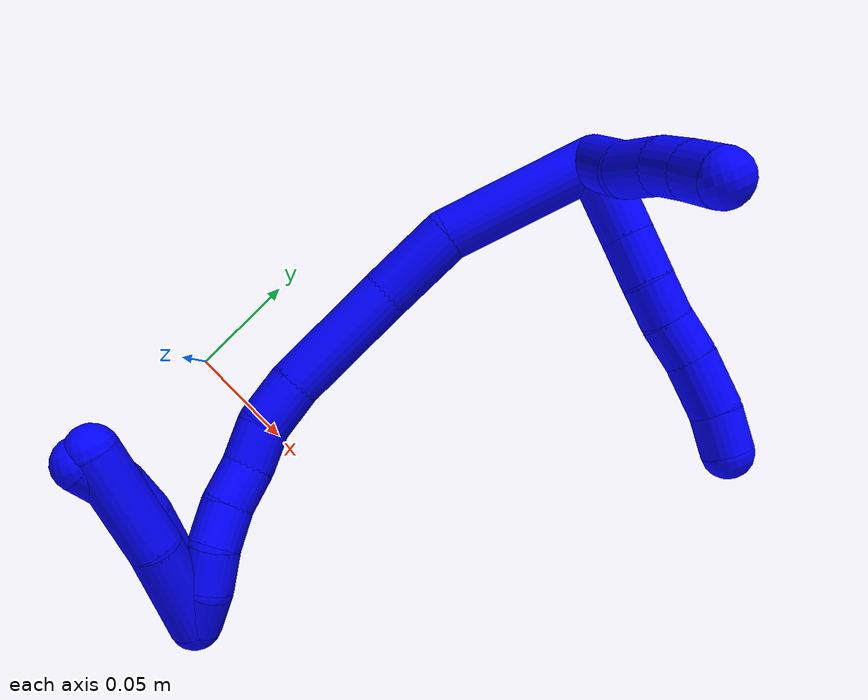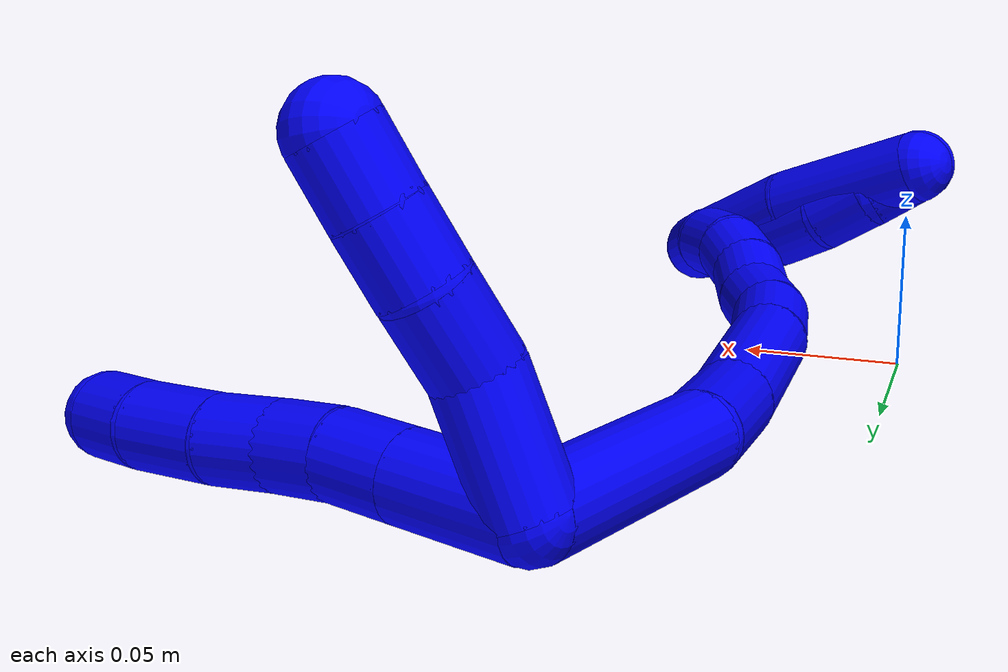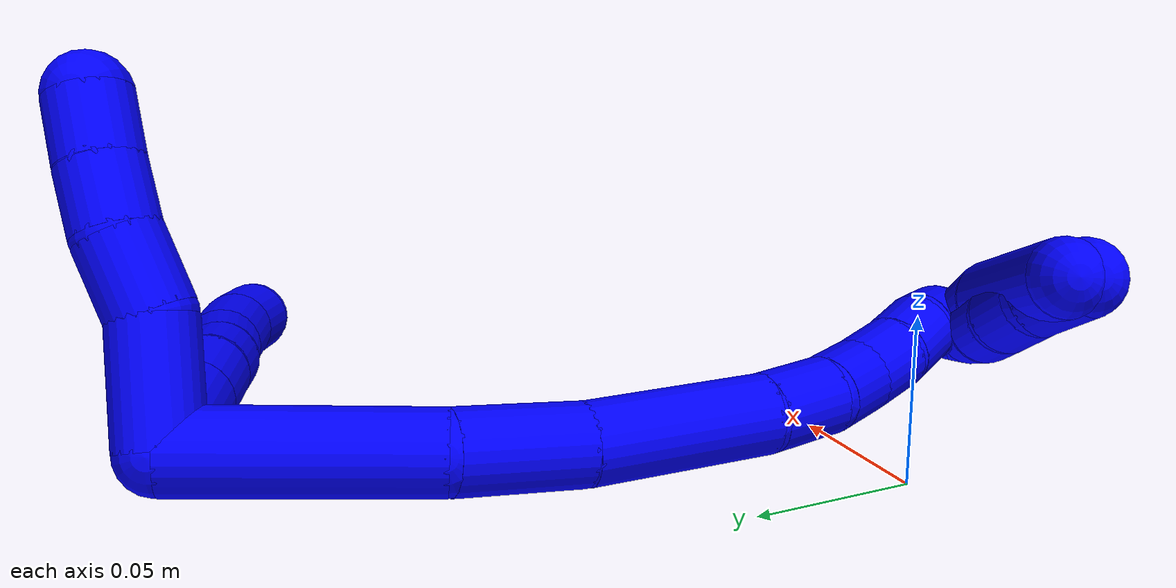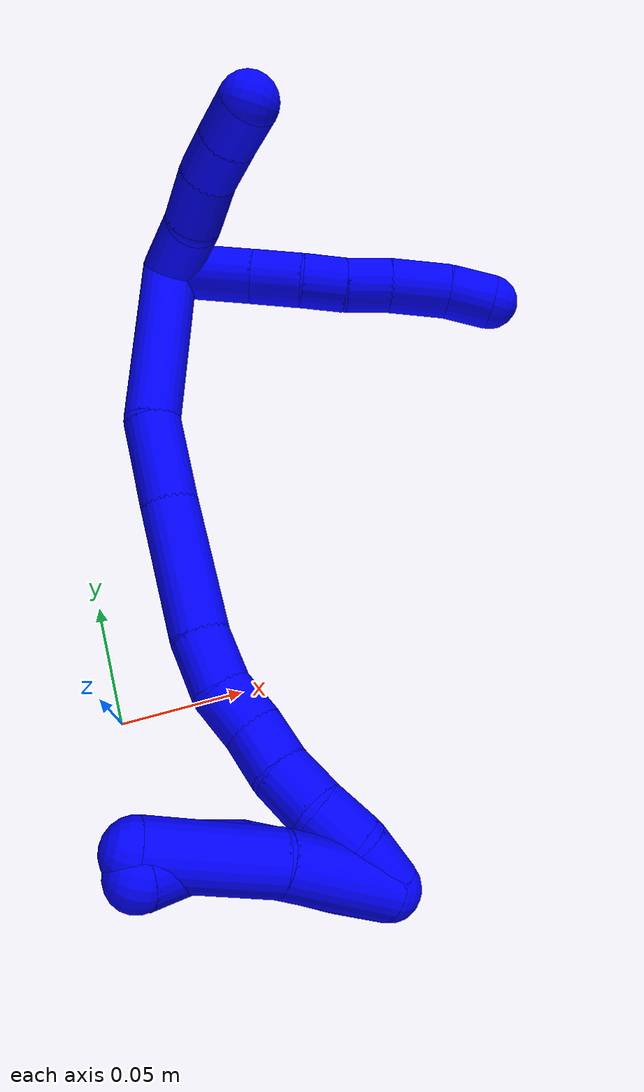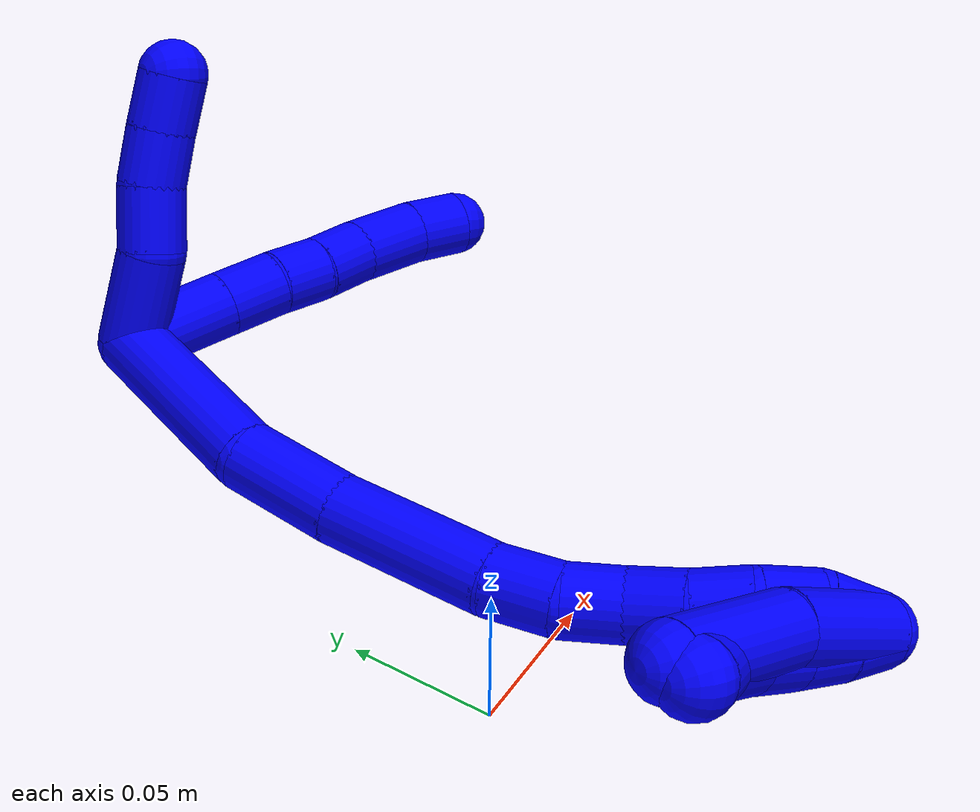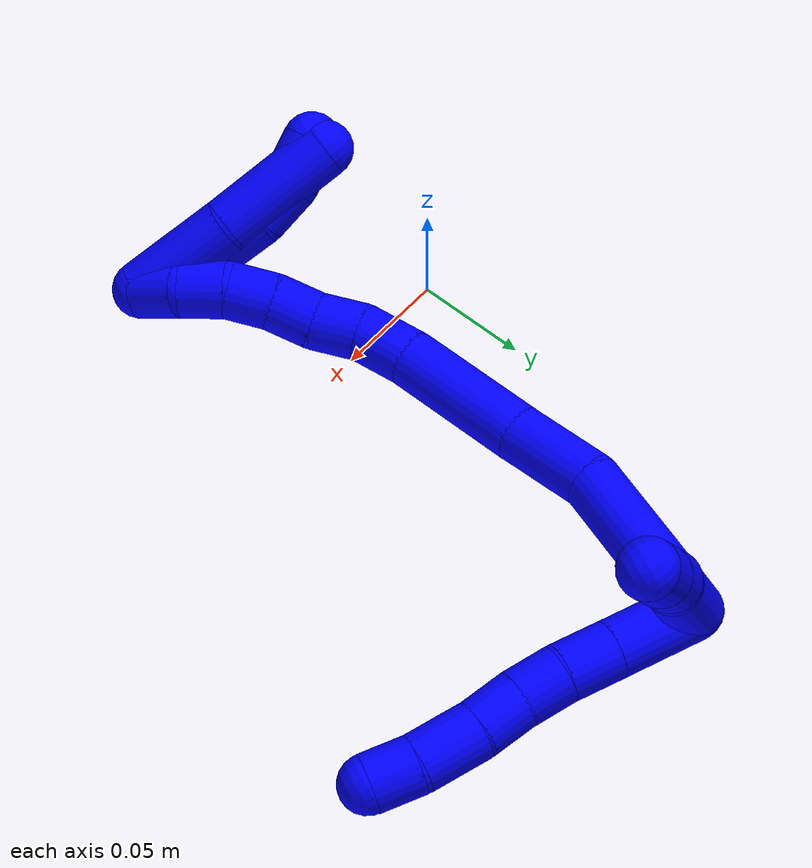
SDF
<sdf version="1.7">
 <world name="default">
  <model name="1">
   <static>0</static>
   <link name="1">
    <collision name="collision-cylinder-e_1_2_8">
     <pose>0.004521 0.003033 -0.018309 -2.97742 0.238963 -1.94003</pose>
     <geometry><cylinder><radius>0.0125</radius><length>0.038203</length></cylinder></geometry>
     <surface>
      <friction><ode><mu>1.16</mu><mu2>1.16</mu2><slip1>0</slip1><slip2>0</slip2></ode></friction>
      <contact><ode><kp>1e+06</kp><kd>1</kd><max_vel>0</max_vel><min_depth>0.001</min_depth></ode></contact>
     </surface>
    </collision>
    <visual name="visual-cylinder-e_1_2_8">
     <pose>0.004521 0.003033 -0.018309 -2.97742 0.238963 -1.94003</pose>
     <geometry><cylinder><radius>0.0125</radius><length>0.038203</length></cylinder></geometry>
     <material><ambient>0 0 1 1</ambient></material>
    </visual>
    <collision name="collision-cylinder-e_2_8_9">
     <pose>0.011756 0.007822 -0.047589 -2.98291 0.239567 -1.97403</pose>
     <geometry><cylinder><radius>0.0125</radius><length>0.022876</length></cylinder></geometry>
     <surface>
      <friction><ode><mu>1.16</mu><mu2>1.16</mu2><slip1>0</slip1><slip2>0</slip2></ode></friction>
      <contact><ode><kp>1e+06</kp><kd>1</kd><max_vel>0</max_vel><min_depth>0.001</min_depth></ode></contact>
     </surface>
    </collision>
    <visual name="visual-cylinder-e_2_8_9">
     <pose>0.011756 0.007822 -0.047589 -2.98291 0.239567 -1.97403</pose>
     <geometry><cylinder><radius>0.0125</radius><length>0.022876</length></cylinder></geometry>
     <material><ambient>0 0 1 1</ambient></material>
    </visual>
    <collision name="collision-cylinder-e_3_9_10">
     <pose>0.015677 0.011139 -0.068425 -2.98461 0.120246 -1.30646</pose>
     <geometry><cylinder><radius>0.0125</radius><length>0.020119</length></cylinder></geometry>
     <surface>
      <friction><ode><mu>1.16</mu><mu2>1.16</mu2><slip1>0</slip1><slip2>0</slip2></ode></friction>
      <contact><ode><kp>1e+06</kp><kd>1</kd><max_vel>0</max_vel><min_depth>0.001</min_depth></ode></contact>
     </surface>
    </collision>
    <visual name="visual-cylinder-e_3_9_10">
     <pose>0.015677 0.011139 -0.068425 -2.98461 0.120246 -1.30646</pose>
     <geometry><cylinder><radius>0.0125</radius><length>0.020119</length></cylinder></geometry>
     <material><ambient>0 0 1 1</ambient></material>
    </visual>
    <collision name="collision-cylinder-e_4_10_11">
     <pose>0.017791 0.015426 -0.088225 -2.87383 0.087797 -0.630513</pose>
     <geometry><cylinder><radius>0.0125</radius><length>0.020686</length></cylinder></geometry>
     <surface>
      <friction><ode><mu>1.16</mu><mu2>1.16</mu2><slip1>0</slip1><slip2>0</slip2></ode></friction>
      <contact><ode><kp>1e+06</kp><kd>1</kd><max_vel>0</max_vel><min_depth>0.001</min_depth></ode></contact>
     </surface>
    </collision>
    <visual name="visual-cylinder-e_4_10_11">
     <pose>0.017791 0.015426 -0.088225 -2.87383 0.087797 -0.630513</pose>
     <geometry><cylinder><radius>0.0125</radius><length>0.020686</length></cylinder></geometry>
     <material><ambient>0 0 1 1</ambient></material>
    </visual>
    <collision name="collision-cylinder-e_5_11_12">
     <pose>0.020698 0.020327 -0.111605 -2.98122 0.145879 -1.47584</pose>
     <geometry><cylinder><radius>0.0125</radius><length>0.027529</length></cylinder></geometry>
     <surface>
      <friction><ode><mu>1.16</mu><mu2>1.16</mu2><slip1>0</slip1><slip2>0</slip2></ode></friction>
      <contact><ode><kp>1e+06</kp><kd>1</kd><max_vel>0</max_vel><min_depth>0.001</min_depth></ode></contact>
     </surface>
    </collision>
    <visual name="visual-cylinder-e_5_11_12">
     <pose>0.020698 0.020327 -0.111605 -2.98122 0.145879 -1.47584</pose>
     <geometry><cylinder><radius>0.0125</radius><length>0.027529</length></cylinder></geometry>
     <material><ambient>0 0 1 1</ambient></material>
    </visual>
    <collision name="collision-cylinder-e_6_12_6">
     <pose>0.024575 0.022553 -0.13517 -3.13649 0.18322 -3.08604</pose>
     <geometry><cylinder><radius>0.0125</radius><length>0.020588</length></cylinder></geometry>
     <surface>
      <friction><ode><mu>1.16</mu><mu2>1.16</mu2><slip1>0</slip1><slip2>0</slip2></ode></friction>
      <contact><ode><kp>1e+06</kp><kd>1</kd><max_vel>0</max_vel><min_depth>0.001</min_depth></ode></contact>
     </surface>
    </collision>
    <visual name="visual-cylinder-e_6_12_6">
     <pose>0.024575 0.022553 -0.13517 -3.13649 0.18322 -3.08604</pose>
     <geometry><cylinder><radius>0.0125</radius><length>0.020588</length></cylinder></geometry>
     <material><ambient>0 0 1 1</ambient></material>
    </visual>
    <collision name="collision-cylinder-e_1_2_13">
     <pose>0.016081 0.007888 -0.001881 -1.80492 1.10375 -1.3246</pose>
     <geometry><cylinder><radius>0.0125</radius><length>0.036019</length></cylinder></geometry>
     <surface>
      <friction><ode><mu>1.16</mu><mu2>1.16</mu2><slip1>0</slip1><slip2>0</slip2></ode></friction>
      <contact><ode><kp>1e+06</kp><kd>1</kd><max_vel>0</max_vel><min_depth>0.001</min_depth></ode></contact>
     </surface>
    </collision>
    <visual name="visual-cylinder-e_1_2_13">
     <pose>0.016081 0.007888 -0.001881 -1.80492 1.10375 -1.3246</pose>
     <geometry><cylinder><radius>0.0125</radius><length>0.036019</length></cylinder></geometry>
     <material><ambient>0 0 1 1</ambient></material>
    </visual>
    <collision name="collision-cylinder-e_2_13_14">
     <pose>0.040679 0.024156 -0.004172 -1.61961 0.792878 -0.82826</pose>
     <geometry><cylinder><radius>0.0125</radius><length>0.023912</length></cylinder></geometry>
     <surface>
      <friction><ode><mu>1.16</mu><mu2>1.16</mu2><slip1>0</slip1><slip2>0</slip2></ode></friction>
      <contact><ode><kp>1e+06</kp><kd>1</kd><max_vel>0</max_vel><min_depth>0.001</min_depth></ode></contact>
     </surface>
    </collision>
    <visual name="visual-cylinder-e_2_13_14">
     <pose>0.040679 0.024156 -0.004172 -1.61961 0.792878 -0.82826</pose>
     <geometry><cylinder><radius>0.0125</radius><length>0.023912</length></cylinder></geometry>
     <material><ambient>0 0 1 1</ambient></material>
    </visual>
    <collision name="collision-cylinder-e_3_14_15">
     <pose>0.057082 0.038479 -0.00623 -1.84145 0.907169 -1.14027</pose>
     <geometry><cylinder><radius>0.0125</radius><length>0.020021</length></cylinder></geometry>
     <surface>
      <friction><ode><mu>1.16</mu><mu2>1.16</mu2><slip1>0</slip1><slip2>0</slip2></ode></friction>
      <contact><ode><kp>1e+06</kp><kd>1</kd><max_vel>0</max_vel><min_depth>0.001</min_depth></ode></contact>
     </surface>
    </collision>
    <visual name="visual-cylinder-e_3_14_15">
     <pose>0.057082 0.038479 -0.00623 -1.84145 0.907169 -1.14027</pose>
     <geometry><cylinder><radius>0.0125</radius><length>0.020021</length></cylinder></geometry>
     <material><ambient>0 0 1 1</ambient></material>
    </visual>
    <collision name="collision-cylinder-e_4_15_5">
     <pose>0.073092 0.049993 -0.009727 -1.89101 0.944984 -1.23211</pose>
     <geometry><cylinder><radius>0.0125</radius><length>0.020048</length></cylinder></geometry>
     <surface>
      <friction><ode><mu>1.16</mu><mu2>1.16</mu2><slip1>0</slip1><slip2>0</slip2></ode></friction>
      <contact><ode><kp>1e+06</kp><kd>1</kd><max_vel>0</max_vel><min_depth>0.001</min_depth></ode></contact>
     </surface>
    </collision>
    <visual name="visual-cylinder-e_4_15_5">
     <pose>0.073092 0.049993 -0.009727 -1.89101 0.944984 -1.23211</pose>
     <geometry><cylinder><radius>0.0125</radius><length>0.020048</length></cylinder></geometry>
     <material><ambient>0 0 1 1</ambient></material>
    </visual>
    <collision name="collision-cylinder-e_1_2_16">
     <pose>0.012563 -0.035444 -0.004057 1.68476 0.338587 0.378632</pose>
     <geometry><cylinder><radius>0.0125</radius><length>0.075645</length></cylinder></geometry>
     <surface>
      <friction><ode><mu>1.16</mu><mu2>1.16</mu2><slip1>0</slip1><slip2>0</slip2></ode></friction>
      <contact><ode><kp>1e+06</kp><kd>1</kd><max_vel>0</max_vel><min_depth>0.001</min_depth></ode></contact>
     </surface>
    </collision>
    <visual name="visual-cylinder-e_1_2_16">
     <pose>0.012563 -0.035444 -0.004057 1.68476 0.338587 0.378632</pose>
     <geometry><cylinder><radius>0.0125</radius><length>0.075645</length></cylinder></geometry>
     <material><ambient>0 0 1 1</ambient></material>
    </visual>
    <collision name="collision-cylinder-e_2_16_17">
     <pose>0.031738 -0.087985 -0.015956 2.00083 0.338022 0.519953</pose>
     <geometry><cylinder><radius>0.0125</radius><length>0.039878</length></cylinder></geometry>
     <surface>
      <friction><ode><mu>1.16</mu><mu2>1.16</mu2><slip1>0</slip1><slip2>0</slip2></ode></friction>
      <contact><ode><kp>1e+06</kp><kd>1</kd><max_vel>0</max_vel><min_depth>0.001</min_depth></ode></contact>
     </surface>
    </collision>
    <visual name="visual-cylinder-e_2_16_17">
     <pose>0.031738 -0.087985 -0.015956 2.00083 0.338022 0.519953</pose>
     <geometry><cylinder><radius>0.0125</radius><length>0.039878</length></cylinder></geometry>
     <material><ambient>0 0 1 1</ambient></material>
    </visual>
    <collision name="collision-cylinder-e_3_17_18">
     <pose>0.051025 -0.129416 -0.035437 2.01693 0.439277 0.680887</pose>
     <geometry><cylinder><radius>0.0125</radius><length>0.059606</length></cylinder></geometry>
     <surface>
      <friction><ode><mu>1.16</mu><mu2>1.16</mu2><slip1>0</slip1><slip2>0</slip2></ode></friction>
      <contact><ode><kp>1e+06</kp><kd>1</kd><max_vel>0</max_vel><min_depth>0.001</min_depth></ode></contact>
     </surface>
    </collision>
    <visual name="visual-cylinder-e_3_17_18">
     <pose>0.051025 -0.129416 -0.035437 2.01693 0.439277 0.680887</pose>
     <geometry><cylinder><radius>0.0125</radius><length>0.059606</length></cylinder></geometry>
     <material><ambient>0 0 1 1</ambient></material>
    </visual>
    <collision name="collision-cylinder-e_4_18_19">
     <pose>0.069439 -0.16252 -0.053165 2.17777 0.493182 0.897071</pose>
     <geometry><cylinder><radius>0.0125</radius><length>0.024244</length></cylinder></geometry>
     <surface>
      <friction><ode><mu>1.16</mu><mu2>1.16</mu2><slip1>0</slip1><slip2>0</slip2></ode></friction>
      <contact><ode><kp>1e+06</kp><kd>1</kd><max_vel>0</max_vel><min_depth>0.001</min_depth></ode></contact>
     </surface>
    </collision>
    <visual name="visual-cylinder-e_4_18_19">
     <pose>0.069439 -0.16252 -0.053165 2.17777 0.493182 0.897071</pose>
     <geometry><cylinder><radius>0.0125</radius><length>0.024244</length></cylinder></geometry>
     <material><ambient>0 0 1 1</ambient></material>
    </visual>
    <collision name="collision-cylinder-e_5_19_20">
     <pose>0.079832 -0.176713 -0.066647 2.50857 0.469852 1.26217</pose>
     <geometry><cylinder><radius>0.0125</radius><length>0.020563</length></cylinder></geometry>
     <surface>
      <friction><ode><mu>1.16</mu><mu2>1.16</mu2><slip1>0</slip1><slip2>0</slip2></ode></friction>
      <contact><ode><kp>1e+06</kp><kd>1</kd><max_vel>0</max_vel><min_depth>0.001</min_depth></ode></contact>
     </surface>
    </collision>
    <visual name="visual-cylinder-e_5_19_20">
     <pose>0.079832 -0.176713 -0.066647 2.50857 0.469852 1.26217</pose>
     <geometry><cylinder><radius>0.0125</radius><length>0.020563</length></cylinder></geometry>
     <material><ambient>0 0 1 1</ambient></material>
    </visual>
    <collision name="collision-cylinder-e_6_20_21">
     <pose>0.090445 -0.187645 -0.079917 2.38869 0.636673 1.38985</pose>
     <geometry><cylinder><radius>0.0125</radius><length>0.02004</length></cylinder></geometry>
     <surface>
      <friction><ode><mu>1.16</mu><mu2>1.16</mu2><slip1>0</slip1><slip2>0</slip2></ode></friction>
      <contact><ode><kp>1e+06</kp><kd>1</kd><max_vel>0</max_vel><min_depth>0.001</min_depth></ode></contact>
     </surface>
    </collision>
    <visual name="visual-cylinder-e_6_20_21">
     <pose>0.090445 -0.187645 -0.079917 2.38869 0.636673 1.38985</pose>
     <geometry><cylinder><radius>0.0125</radius><length>0.02004</length></cylinder></geometry>
     <material><ambient>0 0 1 1</ambient></material>
    </visual>
    <collision name="collision-cylinder-e_7_21_22">
     <pose>0.1019 -0.197452 -0.092968 2.60172 0.581696 1.64938</pose>
     <geometry><cylinder><radius>0.0125</radius><length>0.020014</length></cylinder></geometry>
     <surface>
      <friction><ode><mu>1.16</mu><mu2>1.16</mu2><slip1>0</slip1><slip2>0</slip2></ode></friction>
      <contact><ode><kp>1e+06</kp><kd>1</kd><max_vel>0</max_vel><min_depth>0.001</min_depth></ode></contact>
     </surface>
    </collision>
    <visual name="visual-cylinder-e_7_21_22">
     <pose>0.1019 -0.197452 -0.092968 2.60172 0.581696 1.64938</pose>
     <geometry><cylinder><radius>0.0125</radius><length>0.020014</length></cylinder></geometry>
     <material><ambient>0 0 1 1</ambient></material>
    </visual>
    <collision name="collision-cylinder-e_8_22_23">
     <pose>0.110501 -0.206091 -0.108599 2.66744 0.315403 1.16416</pose>
     <geometry><cylinder><radius>0.0125</radius><length>0.020002</length></cylinder></geometry>
     <surface>
      <friction><ode><mu>1.16</mu><mu2>1.16</mu2><slip1>0</slip1><slip2>0</slip2></ode></friction>
      <contact><ode><kp>1e+06</kp><kd>1</kd><max_vel>0</max_vel><min_depth>0.001</min_depth></ode></contact>
     </surface>
    </collision>
    <visual name="visual-cylinder-e_8_22_23">
     <pose>0.110501 -0.206091 -0.108599 2.66744 0.315403 1.16416</pose>
     <geometry><cylinder><radius>0.0125</radius><length>0.020002</length></cylinder></geometry>
     <material><ambient>0 0 1 1</ambient></material>
    </visual>
    <collision name="collision-cylinder-e_9_23_1">
     <pose>0.114429 -0.216761 -0.124762 2.4539 0.082688 0.230037</pose>
     <geometry><cylinder><radius>0.0125</radius><length>0.020008</length></cylinder></geometry>
     <surface>
      <friction><ode><mu>1.16</mu><mu2>1.16</mu2><slip1>0</slip1><slip2>0</slip2></ode></friction>
      <contact><ode><kp>1e+06</kp><kd>1</kd><max_vel>0</max_vel><min_depth>0.001</min_depth></ode></contact>
     </surface>
    </collision>
    <visual name="visual-cylinder-e_9_23_1">
     <pose>0.114429 -0.216761 -0.124762 2.4539 0.082688 0.230037</pose>
     <geometry><cylinder><radius>0.0125</radius><length>0.020008</length></cylinder></geometry>
     <material><ambient>0 0 1 1</ambient></material>
    </visual>
    <collision name="collision-cylinder-e_1_1_24">
     <pose>0.11525 -0.223024 -0.122466 -0.006593 -0.000563 2e-06</pose>
     <geometry><cylinder><radius>0.0125</radius><length>0.02</length></cylinder></geometry>
     <surface>
      <friction><ode><mu>1.16</mu><mu2>1.16</mu2><slip1>0</slip1><slip2>0</slip2></ode></friction>
      <contact><ode><kp>1e+06</kp><kd>1</kd><max_vel>0</max_vel><min_depth>0.001</min_depth></ode></contact>
     </surface>
    </collision>
    <visual name="visual-cylinder-e_1_1_24">
     <pose>0.11525 -0.223024 -0.122466 -0.006593 -0.000563 2e-06</pose>
     <geometry><cylinder><radius>0.0125</radius><length>0.02</length></cylinder></geometry>
     <material><ambient>0 0 1 1</ambient></material>
    </visual>
    <collision name="collision-cylinder-e_2_24_25">
     <pose>0.115597 -0.222086 -0.102511 -0.087309 0.035286 -0.001542</pose>
     <geometry><cylinder><radius>0.0125</radius><length>0.02</length></cylinder></geometry>
     <surface>
      <friction><ode><mu>1.16</mu><mu2>1.16</mu2><slip1>0</slip1><slip2>0</slip2></ode></friction>
      <contact><ode><kp>1e+06</kp><kd>1</kd><max_vel>0</max_vel><min_depth>0.001</min_depth></ode></contact>
     </surface>
    </collision>
    <visual name="visual-cylinder-e_2_24_25">
     <pose>0.115597 -0.222086 -0.102511 -0.087309 0.035286 -0.001542</pose>
     <geometry><cylinder><radius>0.0125</radius><length>0.02</length></cylinder></geometry>
     <material><ambient>0 0 1 1</ambient></material>
    </visual>
    <collision name="collision-cylinder-e_3_25_26">
     <pose>0.117786 -0.220536 -0.082748 -0.069114 0.184667 -0.006402</pose>
     <geometry><cylinder><radius>0.0125</radius><length>0.02</length></cylinder></geometry>
     <surface>
      <friction><ode><mu>1.16</mu><mu2>1.16</mu2><slip1>0</slip1><slip2>0</slip2></ode></friction>
      <contact><ode><kp>1e+06</kp><kd>1</kd><max_vel>0</max_vel><min_depth>0.001</min_depth></ode></contact>
     </surface>
    </collision>
    <visual name="visual-cylinder-e_3_25_26">
     <pose>0.117786 -0.220536 -0.082748 -0.069114 0.184667 -0.006402</pose>
     <geometry><cylinder><radius>0.0125</radius><length>0.02</length></cylinder></geometry>
     <material><ambient>0 0 1 1</ambient></material>
    </visual>
    <collision name="collision-cylinder-e_4_26_27">
     <pose>0.122891 -0.220509 -0.063514 0.068997 0.33299 0.0116</pose>
     <geometry><cylinder><radius>0.0125</radius><length>0.02</length></cylinder></geometry>
     <surface>
      <friction><ode><mu>1.16</mu><mu2>1.16</mu2><slip1>0</slip1><slip2>0</slip2></ode></friction>
      <contact><ode><kp>1e+06</kp><kd>1</kd><max_vel>0</max_vel><min_depth>0.001</min_depth></ode></contact>
     </surface>
    </collision>
    <visual name="visual-cylinder-e_4_26_27">
     <pose>0.122891 -0.220509 -0.063514 0.068997 0.33299 0.0116</pose>
     <geometry><cylinder><radius>0.0125</radius><length>0.02</length></cylinder></geometry>
     <material><ambient>0 0 1 1</ambient></material>
    </visual>
    <collision name="collision-cylinder-e_5_27_4">
     <pose>0.130679 -0.224361 -0.045759 0.36695 0.468924 0.088587</pose>
     <geometry><cylinder><radius>0.0125</radius><length>0.02</length></cylinder></geometry>
     <surface>
      <friction><ode><mu>1.16</mu><mu2>1.16</mu2><slip1>0</slip1><slip2>0</slip2></ode></friction>
      <contact><ode><kp>1e+06</kp><kd>1</kd><max_vel>0</max_vel><min_depth>0.001</min_depth></ode></contact>
     </surface>
    </collision>
    <visual name="visual-cylinder-e_5_27_4">
     <pose>0.130679 -0.224361 -0.045759 0.36695 0.468924 0.088587</pose>
     <geometry><cylinder><radius>0.0125</radius><length>0.02</length></cylinder></geometry>
     <material><ambient>0 0 1 1</ambient></material>
    </visual>
    <collision name="collision-cylinder-e_1_1_28">
     <pose>0.120263 -0.220548 -0.109665 -0.110993 0.214901 -0.011985</pose>
     <geometry><cylinder><radius>0.0125</radius><length>0.046964</length></cylinder></geometry>
     <surface>
      <friction><ode><mu>1.16</mu><mu2>1.16</mu2><slip1>0</slip1><slip2>0</slip2></ode></friction>
      <contact><ode><kp>1e+06</kp><kd>1</kd><max_vel>0</max_vel><min_depth>0.001</min_depth></ode></contact>
     </surface>
    </collision>
    <visual name="visual-cylinder-e_1_1_28">
     <pose>0.120263 -0.220548 -0.109665 -0.110993 0.214901 -0.011985</pose>
     <geometry><cylinder><radius>0.0125</radius><length>0.046964</length></cylinder></geometry>
     <material><ambient>0 0 1 1</ambient></material>
    </visual>
    <collision name="collision-cylinder-e_2_28_3">
     <pose>0.129016 -0.21942 -0.06065 0.053851 0.141714 0.003823</pose>
     <geometry><cylinder><radius>0.0125</radius><length>0.053036</length></cylinder></geometry>
     <surface>
      <friction><ode><mu>1.16</mu><mu2>1.16</mu2><slip1>0</slip1><slip2>0</slip2></ode></friction>
      <contact><ode><kp>1e+06</kp><kd>1</kd><max_vel>0</max_vel><min_depth>0.001</min_depth></ode></contact>
     </surface>
    </collision>
    <visual name="visual-cylinder-e_2_28_3">
     <pose>0.129016 -0.21942 -0.06065 0.053851 0.141714 0.003823</pose>
     <geometry><cylinder><radius>0.0125</radius><length>0.053036</length></cylinder></geometry>
     <material><ambient>0 0 1 1</ambient></material>
    </visual>
    <collision name="collision-sphere-3">
     <pose>0.132762 -0.220833 -0.034436 0 -0 0</pose>
     <geometry><sphere><radius>0.0125</radius></sphere></geometry>
     <surface>
      <friction><ode><mu>1.16</mu><mu2>1.16</mu2><slip1>0</slip1><slip2>0</slip2></ode></friction>
      <contact><ode><kp>1e+06</kp><kd>1</kd><max_vel>0</max_vel><min_depth>0.001</min_depth></ode></contact>
     </surface>
    </collision>
    <visual name="visual-sphere-3">
     <pose>0.132762 -0.220833 -0.034436 0 -0 0</pose>
     <geometry><sphere><radius>0.0125</radius></sphere></geometry>
     <material><ambient>0 0 1 1</ambient></material>
    </visual>
    <collision name="collision-sphere-28">
     <pose>0.125271 -0.218007 -0.086864 0 -0 0</pose>
     <geometry><sphere><radius>0.0125</radius></sphere></geometry>
     <surface>
      <friction><ode><mu>1.16</mu><mu2>1.16</mu2><slip1>0</slip1><slip2>0</slip2></ode></friction>
      <contact><ode><kp>1e+06</kp><kd>1</kd><max_vel>0</max_vel><min_depth>0.001</min_depth></ode></contact>
     </surface>
    </collision>
    <visual name="visual-sphere-28">
     <pose>0.125271 -0.218007 -0.086864 0 -0 0</pose>
     <geometry><sphere><radius>0.0125</radius></sphere></geometry>
     <material><ambient>0 0 1 1</ambient></material>
    </visual>
    <collision name="collision-sphere-4">
     <pose>0.135198 -0.227561 -0.037432 0 -0 0</pose>
     <geometry><sphere><radius>0.0125</radius></sphere></geometry>
     <surface>
      <friction><ode><mu>1.16</mu><mu2>1.16</mu2><slip1>0</slip1><slip2>0</slip2></ode></friction>
      <contact><ode><kp>1e+06</kp><kd>1</kd><max_vel>0</max_vel><min_depth>0.001</min_depth></ode></contact>
     </surface>
    </collision>
    <visual name="visual-sphere-4">
     <pose>0.135198 -0.227561 -0.037432 0 -0 0</pose>
     <geometry><sphere><radius>0.0125</radius></sphere></geometry>
     <material><ambient>0 0 1 1</ambient></material>
    </visual>
    <collision name="collision-sphere-27">
     <pose>0.12616 -0.22116 -0.054085 0 -0 0</pose>
     <geometry><sphere><radius>0.0125</radius></sphere></geometry>
     <surface>
      <friction><ode><mu>1.16</mu><mu2>1.16</mu2><slip1>0</slip1><slip2>0</slip2></ode></friction>
      <contact><ode><kp>1e+06</kp><kd>1</kd><max_vel>0</max_vel><min_depth>0.001</min_depth></ode></contact>
     </surface>
    </collision>
    <visual name="visual-sphere-27">
     <pose>0.12616 -0.22116 -0.054085 0 -0 0</pose>
     <geometry><sphere><radius>0.0125</radius></sphere></geometry>
     <material><ambient>0 0 1 1</ambient></material>
    </visual>
    <collision name="collision-sphere-26">
     <pose>0.119622 -0.219857 -0.072942 0 -0 0</pose>
     <geometry><sphere><radius>0.0125</radius></sphere></geometry>
     <surface>
      <friction><ode><mu>1.16</mu><mu2>1.16</mu2><slip1>0</slip1><slip2>0</slip2></ode></friction>
      <contact><ode><kp>1e+06</kp><kd>1</kd><max_vel>0</max_vel><min_depth>0.001</min_depth></ode></contact>
     </surface>
    </collision>
    <visual name="visual-sphere-26">
     <pose>0.119622 -0.219857 -0.072942 0 -0 0</pose>
     <geometry><sphere><radius>0.0125</radius></sphere></geometry>
     <material><ambient>0 0 1 1</ambient></material>
    </visual>
    <collision name="collision-sphere-25">
     <pose>0.11595 -0.221215 -0.092555 0 -0 0</pose>
     <geometry><sphere><radius>0.0125</radius></sphere></geometry>
     <surface>
      <friction><ode><mu>1.16</mu><mu2>1.16</mu2><slip1>0</slip1><slip2>0</slip2></ode></friction>
      <contact><ode><kp>1e+06</kp><kd>1</kd><max_vel>0</max_vel><min_depth>0.001</min_depth></ode></contact>
     </surface>
    </collision>
    <visual name="visual-sphere-25">
     <pose>0.11595 -0.221215 -0.092555 0 -0 0</pose>
     <geometry><sphere><radius>0.0125</radius></sphere></geometry>
     <material><ambient>0 0 1 1</ambient></material>
    </visual>
    <collision name="collision-sphere-24">
     <pose>0.115244 -0.222958 -0.112466 0 -0 0</pose>
     <geometry><sphere><radius>0.0125</radius></sphere></geometry>
     <surface>
      <friction><ode><mu>1.16</mu><mu2>1.16</mu2><slip1>0</slip1><slip2>0</slip2></ode></friction>
      <contact><ode><kp>1e+06</kp><kd>1</kd><max_vel>0</max_vel><min_depth>0.001</min_depth></ode></contact>
     </surface>
    </collision>
    <visual name="visual-sphere-24">
     <pose>0.115244 -0.222958 -0.112466 0 -0 0</pose>
     <geometry><sphere><radius>0.0125</radius></sphere></geometry>
     <material><ambient>0 0 1 1</ambient></material>
    </visual>
    <collision name="collision-sphere-1">
     <pose>0.115256 -0.223089 -0.132466 0 -0 0</pose>
     <geometry><sphere><radius>0.0125</radius></sphere></geometry>
     <surface>
      <friction><ode><mu>1.16</mu><mu2>1.16</mu2><slip1>0</slip1><slip2>0</slip2></ode></friction>
      <contact><ode><kp>1e+06</kp><kd>1</kd><max_vel>0</max_vel><min_depth>0.001</min_depth></ode></contact>
     </surface>
    </collision>
    <visual name="visual-sphere-1">
     <pose>0.115256 -0.223089 -0.132466 0 -0 0</pose>
     <geometry><sphere><radius>0.0125</radius></sphere></geometry>
     <material><ambient>0 0 1 1</ambient></material>
    </visual>
    <collision name="collision-sphere-23">
     <pose>0.113603 -0.210433 -0.117058 0 -0 0</pose>
     <geometry><sphere><radius>0.0125</radius></sphere></geometry>
     <surface>
      <friction><ode><mu>1.16</mu><mu2>1.16</mu2><slip1>0</slip1><slip2>0</slip2></ode></friction>
      <contact><ode><kp>1e+06</kp><kd>1</kd><max_vel>0</max_vel><min_depth>0.001</min_depth></ode></contact>
     </surface>
    </collision>
    <visual name="visual-sphere-23">
     <pose>0.113603 -0.210433 -0.117058 0 -0 0</pose>
     <geometry><sphere><radius>0.0125</radius></sphere></geometry>
     <material><ambient>0 0 1 1</ambient></material>
    </visual>
    <collision name="collision-sphere-22">
     <pose>0.107398 -0.20175 -0.100141 0 -0 0</pose>
     <geometry><sphere><radius>0.0125</radius></sphere></geometry>
     <surface>
      <friction><ode><mu>1.16</mu><mu2>1.16</mu2><slip1>0</slip1><slip2>0</slip2></ode></friction>
      <contact><ode><kp>1e+06</kp><kd>1</kd><max_vel>0</max_vel><min_depth>0.001</min_depth></ode></contact>
     </surface>
    </collision>
    <visual name="visual-sphere-22">
     <pose>0.107398 -0.20175 -0.100141 0 -0 0</pose>
     <geometry><sphere><radius>0.0125</radius></sphere></geometry>
     <material><ambient>0 0 1 1</ambient></material>
    </visual>
    <collision name="collision-sphere-21">
     <pose>0.096402 -0.193154 -0.085796 0 -0 0</pose>
     <geometry><sphere><radius>0.0125</radius></sphere></geometry>
     <surface>
      <friction><ode><mu>1.16</mu><mu2>1.16</mu2><slip1>0</slip1><slip2>0</slip2></ode></friction>
      <contact><ode><kp>1e+06</kp><kd>1</kd><max_vel>0</max_vel><min_depth>0.001</min_depth></ode></contact>
     </surface>
    </collision>
    <visual name="visual-sphere-21">
     <pose>0.096402 -0.193154 -0.085796 0 -0 0</pose>
     <geometry><sphere><radius>0.0125</radius></sphere></geometry>
     <material><ambient>0 0 1 1</ambient></material>
    </visual>
    <collision name="collision-sphere-12">
     <pose>0.022699 0.022502 -0.125048 0 -0 0</pose>
     <geometry><sphere><radius>0.0125</radius></sphere></geometry>
     <surface>
      <friction><ode><mu>1.16</mu><mu2>1.16</mu2><slip1>0</slip1><slip2>0</slip2></ode></friction>
      <contact><ode><kp>1e+06</kp><kd>1</kd><max_vel>0</max_vel><min_depth>0.001</min_depth></ode></contact>
     </surface>
    </collision>
    <visual name="visual-sphere-12">
     <pose>0.022699 0.022502 -0.125048 0 -0 0</pose>
     <geometry><sphere><radius>0.0125</radius></sphere></geometry>
     <material><ambient>0 0 1 1</ambient></material>
    </visual>
    <collision name="collision-sphere-11">
     <pose>0.018698 0.018152 -0.098161 0 -0 0</pose>
     <geometry><sphere><radius>0.0125</radius></sphere></geometry>
     <surface>
      <friction><ode><mu>1.16</mu><mu2>1.16</mu2><slip1>0</slip1><slip2>0</slip2></ode></friction>
      <contact><ode><kp>1e+06</kp><kd>1</kd><max_vel>0</max_vel><min_depth>0.001</min_depth></ode></contact>
     </surface>
    </collision>
    <visual name="visual-sphere-11">
     <pose>0.018698 0.018152 -0.098161 0 -0 0</pose>
     <geometry><sphere><radius>0.0125</radius></sphere></geometry>
     <material><ambient>0 0 1 1</ambient></material>
    </visual>
    <collision name="collision-sphere-10">
     <pose>0.016884 0.0127 -0.078289 0 -0 0</pose>
     <geometry><sphere><radius>0.0125</radius></sphere></geometry>
     <surface>
      <friction><ode><mu>1.16</mu><mu2>1.16</mu2><slip1>0</slip1><slip2>0</slip2></ode></friction>
      <contact><ode><kp>1e+06</kp><kd>1</kd><max_vel>0</max_vel><min_depth>0.001</min_depth></ode></contact>
     </surface>
    </collision>
    <visual name="visual-sphere-10">
     <pose>0.016884 0.0127 -0.078289 0 -0 0</pose>
     <geometry><sphere><radius>0.0125</radius></sphere></geometry>
     <material><ambient>0 0 1 1</ambient></material>
    </visual>
    <collision name="collision-sphere-9">
     <pose>0.01447 0.009578 -0.058561 0 -0 0</pose>
     <geometry><sphere><radius>0.0125</radius></sphere></geometry>
     <surface>
      <friction><ode><mu>1.16</mu><mu2>1.16</mu2><slip1>0</slip1><slip2>0</slip2></ode></friction>
      <contact><ode><kp>1e+06</kp><kd>1</kd><max_vel>0</max_vel><min_depth>0.001</min_depth></ode></contact>
     </surface>
    </collision>
    <visual name="visual-sphere-9">
     <pose>0.01447 0.009578 -0.058561 0 -0 0</pose>
     <geometry><sphere><radius>0.0125</radius></sphere></geometry>
     <material><ambient>0 0 1 1</ambient></material>
    </visual>
    <collision name="collision-sphere-2">
     <geometry><sphere><radius>0.0125</radius></sphere></geometry>
     <surface>
      <friction><ode><mu>1.16</mu><mu2>1.16</mu2><slip1>0</slip1><slip2>0</slip2></ode></friction>
      <contact><ode><kp>1e+06</kp><kd>1</kd><max_vel>0</max_vel><min_depth>0.001</min_depth></ode></contact>
     </surface>
    </collision>
    <visual name="visual-sphere-2">
     <geometry><sphere><radius>0.0125</radius></sphere></geometry>
     <material><ambient>0 0 1 1</ambient></material>
    </visual>
    <collision name="collision-sphere-19">
     <pose>0.075177 -0.17129 -0.059256 0 -0 0</pose>
     <geometry><sphere><radius>0.0125</radius></sphere></geometry>
     <surface>
      <friction><ode><mu>1.16</mu><mu2>1.16</mu2><slip1>0</slip1><slip2>0</slip2></ode></friction>
      <contact><ode><kp>1e+06</kp><kd>1</kd><max_vel>0</max_vel><min_depth>0.001</min_depth></ode></contact>
     </surface>
    </collision>
    <visual name="visual-sphere-19">
     <pose>0.075177 -0.17129 -0.059256 0 -0 0</pose>
     <geometry><sphere><radius>0.0125</radius></sphere></geometry>
     <material><ambient>0 0 1 1</ambient></material>
    </visual>
    <collision name="collision-sphere-8">
     <pose>0.009042 0.006066 -0.036618 0 -0 0</pose>
     <geometry><sphere><radius>0.0125</radius></sphere></geometry>
     <surface>
      <friction><ode><mu>1.16</mu><mu2>1.16</mu2><slip1>0</slip1><slip2>0</slip2></ode></friction>
      <contact><ode><kp>1e+06</kp><kd>1</kd><max_vel>0</max_vel><min_depth>0.001</min_depth></ode></contact>
     </surface>
    </collision>
    <visual name="visual-sphere-8">
     <pose>0.009042 0.006066 -0.036618 0 -0 0</pose>
     <geometry><sphere><radius>0.0125</radius></sphere></geometry>
     <material><ambient>0 0 1 1</ambient></material>
    </visual>
    <collision name="collision-sphere-6">
     <pose>0.02645 0.022605 -0.145291 0 -0 0</pose>
     <geometry><sphere><radius>0.0125</radius></sphere></geometry>
     <surface>
      <friction><ode><mu>1.16</mu><mu2>1.16</mu2><slip1>0</slip1><slip2>0</slip2></ode></friction>
      <contact><ode><kp>1e+06</kp><kd>1</kd><max_vel>0</max_vel><min_depth>0.001</min_depth></ode></contact>
     </surface>
    </collision>
    <visual name="visual-sphere-6">
     <pose>0.02645 0.022605 -0.145291 0 -0 0</pose>
     <geometry><sphere><radius>0.0125</radius></sphere></geometry>
     <material><ambient>0 0 1 1</ambient></material>
    </visual>
    <collision name="collision-sphere-13">
     <pose>0.032161 0.015775 -0.003762 0 -0 0</pose>
     <geometry><sphere><radius>0.0125</radius></sphere></geometry>
     <surface>
      <friction><ode><mu>1.16</mu><mu2>1.16</mu2><slip1>0</slip1><slip2>0</slip2></ode></friction>
      <contact><ode><kp>1e+06</kp><kd>1</kd><max_vel>0</max_vel><min_depth>0.001</min_depth></ode></contact>
     </surface>
    </collision>
    <visual name="visual-sphere-13">
     <pose>0.032161 0.015775 -0.003762 0 -0 0</pose>
     <geometry><sphere><radius>0.0125</radius></sphere></geometry>
     <material><ambient>0 0 1 1</ambient></material>
    </visual>
    <collision name="collision-sphere-14">
     <pose>0.049196 0.032537 -0.004581 0 -0 0</pose>
     <geometry><sphere><radius>0.0125</radius></sphere></geometry>
     <surface>
      <friction><ode><mu>1.16</mu><mu2>1.16</mu2><slip1>0</slip1><slip2>0</slip2></ode></friction>
      <contact><ode><kp>1e+06</kp><kd>1</kd><max_vel>0</max_vel><min_depth>0.001</min_depth></ode></contact>
     </surface>
    </collision>
    <visual name="visual-sphere-14">
     <pose>0.049196 0.032537 -0.004581 0 -0 0</pose>
     <geometry><sphere><radius>0.0125</radius></sphere></geometry>
     <material><ambient>0 0 1 1</ambient></material>
    </visual>
    <collision name="collision-sphere-15">
     <pose>0.064968 0.04442 -0.007878 0 -0 0</pose>
     <geometry><sphere><radius>0.0125</radius></sphere></geometry>
     <surface>
      <friction><ode><mu>1.16</mu><mu2>1.16</mu2><slip1>0</slip1><slip2>0</slip2></ode></friction>
      <contact><ode><kp>1e+06</kp><kd>1</kd><max_vel>0</max_vel><min_depth>0.001</min_depth></ode></contact>
     </surface>
    </collision>
    <visual name="visual-sphere-15">
     <pose>0.064968 0.04442 -0.007878 0 -0 0</pose>
     <geometry><sphere><radius>0.0125</radius></sphere></geometry>
     <material><ambient>0 0 1 1</ambient></material>
    </visual>
    <collision name="collision-sphere-5">
     <pose>0.081216 0.055566 -0.011575 0 -0 0</pose>
     <geometry><sphere><radius>0.0125</radius></sphere></geometry>
     <surface>
      <friction><ode><mu>1.16</mu><mu2>1.16</mu2><slip1>0</slip1><slip2>0</slip2></ode></friction>
      <contact><ode><kp>1e+06</kp><kd>1</kd><max_vel>0</max_vel><min_depth>0.001</min_depth></ode></contact>
     </surface>
    </collision>
    <visual name="visual-sphere-5">
     <pose>0.081216 0.055566 -0.011575 0 -0 0</pose>
     <geometry><sphere><radius>0.0125</radius></sphere></geometry>
     <material><ambient>0 0 1 1</ambient></material>
    </visual>
    <collision name="collision-sphere-16">
     <pose>0.025126 -0.070887 -0.008114 0 -0 0</pose>
     <geometry><sphere><radius>0.0125</radius></sphere></geometry>
     <surface>
      <friction><ode><mu>1.16</mu><mu2>1.16</mu2><slip1>0</slip1><slip2>0</slip2></ode></friction>
      <contact><ode><kp>1e+06</kp><kd>1</kd><max_vel>0</max_vel><min_depth>0.001</min_depth></ode></contact>
     </surface>
    </collision>
    <visual name="visual-sphere-16">
     <pose>0.025126 -0.070887 -0.008114 0 -0 0</pose>
     <geometry><sphere><radius>0.0125</radius></sphere></geometry>
     <material><ambient>0 0 1 1</ambient></material>
    </visual>
    <collision name="collision-sphere-17">
     <pose>0.03835 -0.105083 -0.023798 0 -0 0</pose>
     <geometry><sphere><radius>0.0125</radius></sphere></geometry>
     <surface>
      <friction><ode><mu>1.16</mu><mu2>1.16</mu2><slip1>0</slip1><slip2>0</slip2></ode></friction>
      <contact><ode><kp>1e+06</kp><kd>1</kd><max_vel>0</max_vel><min_depth>0.001</min_depth></ode></contact>
     </surface>
    </collision>
    <visual name="visual-sphere-17">
     <pose>0.03835 -0.105083 -0.023798 0 -0 0</pose>
     <geometry><sphere><radius>0.0125</radius></sphere></geometry>
     <material><ambient>0 0 1 1</ambient></material>
    </visual>
    <collision name="collision-sphere-18">
     <pose>0.0637 -0.15375 -0.047075 0 -0 0</pose>
     <geometry><sphere><radius>0.0125</radius></sphere></geometry>
     <surface>
      <friction><ode><mu>1.16</mu><mu2>1.16</mu2><slip1>0</slip1><slip2>0</slip2></ode></friction>
      <contact><ode><kp>1e+06</kp><kd>1</kd><max_vel>0</max_vel><min_depth>0.001</min_depth></ode></contact>
     </surface>
    </collision>
    <visual name="visual-sphere-18">
     <pose>0.0637 -0.15375 -0.047075 0 -0 0</pose>
     <geometry><sphere><radius>0.0125</radius></sphere></geometry>
     <material><ambient>0 0 1 1</ambient></material>
    </visual>
    <collision name="collision-sphere-20">
     <pose>0.084487 -0.182137 -0.074038 0 -0 0</pose>
     <geometry><sphere><radius>0.0125</radius></sphere></geometry>
     <surface>
      <friction><ode><mu>1.16</mu><mu2>1.16</mu2><slip1>0</slip1><slip2>0</slip2></ode></friction>
      <contact><ode><kp>1e+06</kp><kd>1</kd><max_vel>0</max_vel><min_depth>0.001</min_depth></ode></contact>
     </surface>
    </collision>
    <visual name="visual-sphere-20">
     <pose>0.084487 -0.182137 -0.074038 0 -0 0</pose>
     <geometry><sphere><radius>0.0125</radius></sphere></geometry>
     <material><ambient>0 0 1 1</ambient></material>
    </visual>
    <inertial>
     <pose>0.063773 -0.103144 -0.055846 0 -0 0</pose>
     <mass>0.75</mass>
     <inertia><ixx>0.000127</ixx><ixy>0</ixy><ixz>0</ixz><iyy>4.5e-05</iyy><iyz>0</iyz><izz>4e-06</izz></inertia>
    </inertial>
   </link>
   <pose>0.064309 0.194892 0.021007 0.897732 -1.1127 -1.36911</pose>
  </model>
 </world>
</sdf>
